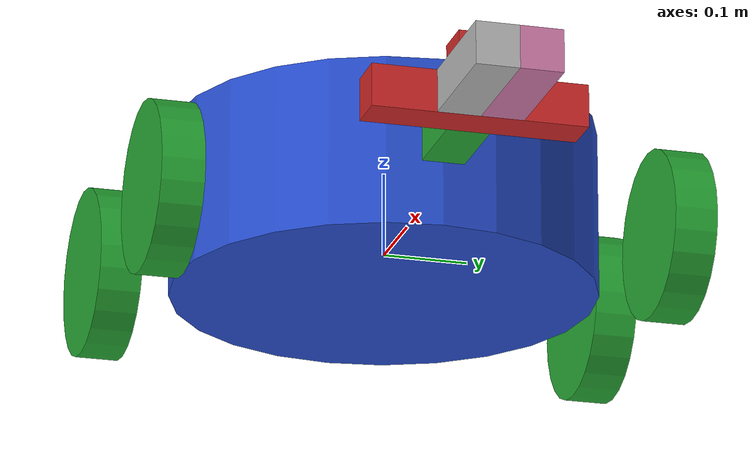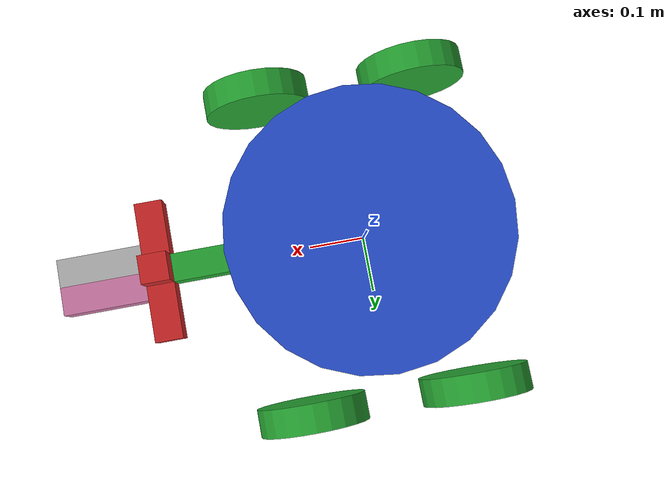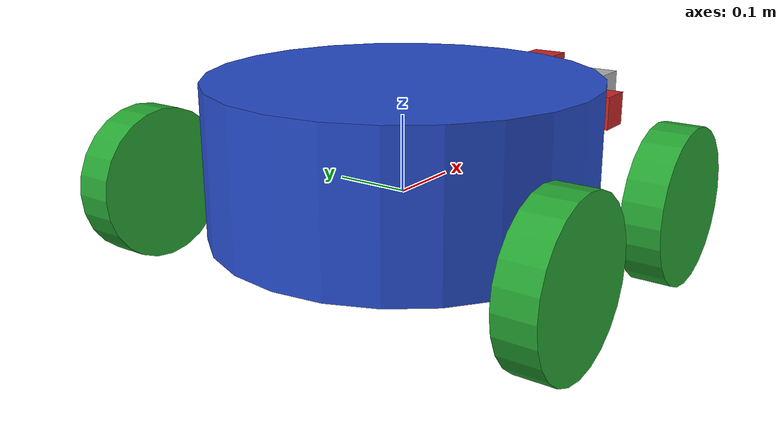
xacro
<?xml version='1.0'?>

<robot name="queenie" xmlns:xacro="http://www.ros.org/wiki/xacro">

  <xacro:include filename="$(find queenie)/src/urdf/queenie.gazebo" />
  <xacro:include filename="$(find queenie)/src/urdf/queenie.trans" />

  <xacro:macro name="default_inertial" params="mass">
    <inertial>
      <mass value="${mass}" />
      <inertia ixx="1.0" ixy="0.0" ixz="0.0" iyy="1.0" iyz="0.0" izz="1.0" />
    </inertial>
  </xacro:macro>

  <xacro:macro name="default_inertial_cuboid" params="mass x_length y_length z_length x:=0 y:=0 z:=0 r:=0 p:=0 yaw:=0">
    <inertial>
      <origin xyz="${x} ${y} ${z}" rpy="${r} ${p} ${yaw}"/>
      <mass value="${mass}" />
      <inertia ixx="${(1/12) * mass * (y_length*y_length + z_length*z_length) * 1}" ixy="0.0" ixz="0.0"
               iyy="${(1/12) * mass * (x_length*x_length + z_length*z_length) * 1}" iyz="0.0"
               izz="${(1/12) * mass * (x_length*x_length + y_length*y_length) * 1}" />
    </inertial>
  </xacro:macro>

  <xacro:macro name="default_inertial_cylinder" params="mass radius height x:=0 y:=0 z:=0 r:=0 p:=0 yaw:=0">
    <inertial>
      <origin xyz="${x} ${y} ${z}" rpy="${r} ${p} ${yaw}"/>
      <mass value="${mass}" />
      <inertia ixx="${(1/12) * mass * (3*radius*radius + height*height) * 1}" ixy="0.0" ixz="0.0"
               iyy="${(1/12) * mass * (3*radius*radius + height*height) * 1}" iyz="0.0"
               izz="${(1/2) * mass * radius*radius * 1}" />
    </inertial>
  </xacro:macro>

  <xacro:macro name="default_inertial_solid_sphere" params="mass radius">
    <inertial>
      <origin xyz="0 0 0" rpy="0 0 0"/>
      <mass value="${mass}" />
      <inertia ixx="${(2/5) * mass * radius*radius}" ixy="0.0" ixz="0.0"
               iyy="${(2/5) * mass * radius*radius}" iyz="0.0"
               izz="${(2/5) * mass * radius*radius}" />
    </inertial>
  </xacro:macro>

  <link name="robot_footprint"></link>

  <joint name="robot_footprint_joint" type="fixed">
    <origin xyz="0 0 0" rpy="0 0 0" />
    <parent link="robot_footprint"/>
    <child link="chassis" />
  </joint>

  <link name='chassis'>
    <xacro:default_inertial_cylinder mass="15" radius="0.25" height="0.2" x="0" y="0" z="0.05" r="0" p="0" yaw="0"/>
    <collision name='collision'>
      <origin xyz="0 0 0.05" rpy=" 0 0 0"/>
      <geometry>
        <cylinder length="0.2" radius="0.25"/>
      </geometry>
    </collision>
    <visual name='chassis_visual'>
      <origin xyz="0 0 0.05" rpy=" 0 0 0"/>
      <geometry>
       <cylinder length="0.2" radius="0.25"/>
      </geometry>
    </visual>
  </link>

  <joint name="gripper_extension" type="fixed">
    <parent link="chassis"/>
    <child link="gripper_pole"/>
    <origin rpy="0 0 0" xyz="0.30 0 0.05"/>
  </joint>

  <link name="gripper_pole">
    <visual>
      <geometry>
        <box size="0.1 0.05 0.05"/>
      </geometry>
      <origin rpy="0 ${0} 0 " xyz="0 0 0"/>
    </visual>
    <collision>
      <geometry>
         <box size="0.01 0.05 0.05"/>
      </geometry>
      <origin rpy="0 ${0} 0 " xyz="0 0 0"/>
    </collision>
    <xacro:default_inertial_cuboid mass="0.5" x_length="0.05" y_length="0.05" z_length="0.05" x="0" y="0" z="0" r="0" p="0" yaw="0"/>
  </link>

  <joint name="neck" type="revolute">
    <parent link="gripper_pole"/>
    <child link="head"/>
    <limit effort="1000.0" velocity="0.05" lower="${-pi/3}" upper="${0.22}"/>
    <origin rpy="0 0 0" xyz="0.0 0 0"/>
    <axis xyz="0 1 0"/>
    <dynamics damping="0.1" friction="0.1" />
  </joint>

  <link name="head">
  <xacro:default_inertial_cuboid mass="0.8" x_length="0.01" y_length="0.025" z_length="0.005" x="0.0" y="0" z="0"/>
  </link>

  <joint name="neck_x" type="revolute">
    <parent link="head"/>
    <child link="head_x"/>
    <limit effort="1000.0" velocity="0.05" lower="-0.5" upper="0.5"/>
    <origin rpy="0 0 0" xyz="0.0 0 0"/>
    <axis xyz="1 0 0"/>
    <dynamics damping="0.1" friction="0.1" />
  </joint>

  <link name="head_x">
  <xacro:default_inertial_cuboid mass="0.8" x_length="0.01" y_length="0.025" z_length="0.005" x="0.0" y="0" z="0"/>
  </link>

  <joint name="head_gripper_pole_vertical" type="fixed">
    <parent link="head_x"/>
    <child link="palm"/>
    <origin rpy="0 0 0" xyz="0.05 0 0"/>
  </joint>

  <link name="palm">
      <collision name="palm_collision">
        <geometry>
          <box size="0.05 0.25 0.05"/>
        </geometry>
        <origin rpy="0 0 0 " xyz="0.025 0 0"/>
      </collision>
      <visual name="visual">
        <geometry>
          <box size="0.05 0.25 0.05"/>
        </geometry>
        <origin rpy="0 0 0 " xyz="0.025 0 0"/>
      </visual>
      <xacro:default_inertial_cuboid mass="0.8" x_length="0.05" y_length="0.25" z_length="0.05" x="0.025" y="0" z="0"/>
  </link>

  <joint name="palm_left_finger" type="prismatic">
    <child link="left_finger"/>
    <parent link="palm"/>
    <limit effort="1000.0" lower="0" upper="0.1" velocity="0.5"/>
    <origin rpy="0 0 0" xyz="0.125 0.025 0"/>
    <axis xyz="0 1 0"/>
    <dynamics damping="0" friction="0.1" />
  </joint>

  <link name="left_finger">
    <collision name="left_finger_collision">
      <geometry>
        <box size="0.15 0.05 0.05"/>
      </geometry>
      <origin xyz="0 0 0" rpy="0 0 0 "/>
    </collision>
    <visual name="visual">
      <geometry>
        <box size="0.15 0.05 0.05"/>
      </geometry>
      <origin xyz="0 0 0" rpy="0 0 0 "/>
    </visual>
    <xacro:default_inertial_cuboid mass="0.3" x_length="0.15" y_length="0.05" z_length="0.05" x="0" y="0" z="0"/>
  </link>

  <joint name="palm_right_finger" type="prismatic">
    <child link="right_finger"/>
    <parent link="palm"/>
    <limit effort="1000.0" lower="0" upper="0.1" velocity="0.5"/>
    <origin rpy="0 0 0" xyz="0.125 -0.025 0"/>
    <axis xyz="0 -1 0"/>
    <dynamics damping="0" friction="0.1" />
  </joint>

  <link name="right_finger">
    <collision name="right_finger_collision">
      <geometry>
        <box size="0.15 0.05 0.05"/>
      </geometry>
      <origin xyz="0 0 0" rpy="0 0 0 "/>
    </collision>
    <visual name="visual">
      <geometry>
        <box size="0.15 0.05 0.05"/>
      </geometry>
      <origin xyz="0 0 0" rpy="0 0 0 "/>
    </visual>
    <xacro:default_inertial_cuboid mass="0.3" x_length="0.15" y_length="0.05" z_length="0.05" x="0" y="0" z="0"/>
  </link>

  <joint type="continuous" name="left_wheel_hinge">
    <origin xyz="0.15 0.30 0" rpy="0 0 0" />
    <parent link="chassis"/>
    <child link="left_wheel" />
    <axis xyz="0 1 0" rpy="0 0 0" />
    <limit effort="1000000" velocity="1000" />
    <dynamics damping="1.0" friction="1.0" />
  </joint>

  <link name="left_wheel">
    <xacro:default_inertial_cylinder mass="2" radius="0.1" height="0.05" x="0" y="0" z="0" r="0" p="${pi/2}" yaw="${pi/2}"/>

    <collision>
      <origin xyz="0 0 0" rpy="0 1.5707 1.5707"/>
      <geometry>
        <cylinder radius="0.1" length="0.05"/>
      </geometry>
    </collision>

    <visual>
      <origin xyz="0 0 0" rpy="0 1.5707 1.5707"/>
      <geometry>
        <cylinder radius="0.1" length="0.05"/>
      </geometry>
    </visual>

  </link>

  <joint type="continuous" name="right_wheel_hinge">
    <origin xyz="0.15 -0.30 0" rpy="0 0 0" />
    <parent link="chassis"/>
    <child link="right_wheel" />
    <axis xyz="0 1 0" rpy="0 0 0" />
    <limit effort="1000000" velocity="1000" />
    <dynamics damping="1.0" friction="1.0" />
  </joint>

  <link name="right_wheel">
    <xacro:default_inertial_cylinder mass="2" radius="0.1" height="0.05" x="0" y="0" z="0" r="0" p="${pi/2}" yaw="${pi/2}"/>

    <collision>
      <origin xyz="0 0 0" rpy="0 1.5707 1.5707"/>
      <geometry>
        <cylinder radius="0.1" length="0.05"/>
      </geometry>
    </collision>

    <visual>
      <origin xyz="0 0 0" rpy="0 1.5707 1.5707"/>
      <geometry>
        <cylinder radius="0.1" length="0.05"/>
      </geometry>
    </visual>

  </link>

    <joint type="continuous" name="left_wheel_back_hinge">
    <origin xyz="-0.15 0.30 0" rpy="0 0 0" />
    <parent link="chassis"/>
    <child link="left_wheel_back" />
    <axis xyz="0 1 0" rpy="0 0 0" />
    <limit effort="1000000" velocity="1000" />
    <dynamics damping="1.0" friction="1.0" />
  </joint>

  <link name="left_wheel_back">
    <xacro:default_inertial_cylinder mass="2" radius="0.1" height="0.05" x="0" y="0" z="0" r="0" p="${pi/2}" yaw="${pi/2}"/>

    <collision>
      <origin xyz="0 0 0" rpy="0 1.5707 1.5707"/>
      <geometry>
        <cylinder radius="0.1" length="0.05"/>
      </geometry>
    </collision>

    <visual>
      <origin xyz="0 0 0" rpy="0 1.5707 1.5707"/>
      <geometry>
        <cylinder radius="0.1" length="0.05"/>
      </geometry>
    </visual>

  </link>

  <joint type="continuous" name="right_wheel_back_hinge">
    <origin xyz="-0.15 -0.30 0" rpy="0 0 0" />
    <parent link="chassis"/>
    <child link="right_wheel_back" />
    <axis xyz="0 1 0" rpy="0 0 0" />
    <limit effort="1000000" velocity="1000" />
    <dynamics damping="1.0" friction="1.0" />
  </joint>

  <link name="right_wheel_back">
    <xacro:default_inertial_cylinder mass="2" radius="0.1" height="0.05" x="0" y="0" z="0" r="0" p="${pi/2}" yaw="${pi/2}"/>

    <collision>
      <origin xyz="0 0 0" rpy="0 1.5707 1.5707"/>
      <geometry>
        <cylinder radius="0.1" length="0.05"/>
      </geometry>
    </collision>

    <visual>
      <origin xyz="0 0 0" rpy="0 1.5707 1.5707"/>
      <geometry>
        <cylinder radius="0.1" length="0.05"/>
      </geometry>
    </visual>

  </link>

  <joint name="camera_joint" type="fixed">
    <origin xyz="0.025 0 0.05" rpy="0 0 0" />
    <parent link="palm"/>
    <child link="camera" />
    <axis xyz="0 0 1"/>
  </joint>

  <link name="camera">
      <xacro:default_inertial_cuboid mass="0.01" x_length="0.05" y_length="0.05" z_length="0.05" x="0" y="0" z="0"/>

      <visual>
        <origin xyz="0 0 0" rpy="0 0 0"/>
        <geometry>
          <box size="0.05 0.05 0.05"/>
        </geometry>
      </visual>
    </link>

    <joint name="camera_optical_joint" type="fixed">
      <parent link="camera"/>
      <child link="camera_optical"/>
      <origin xyz="0.0 0.0 0.0" rpy="${-pi/2} 0.0 ${-pi/2}"/>
    </joint>

    <link name="camera_optical"></link>

</robot>
